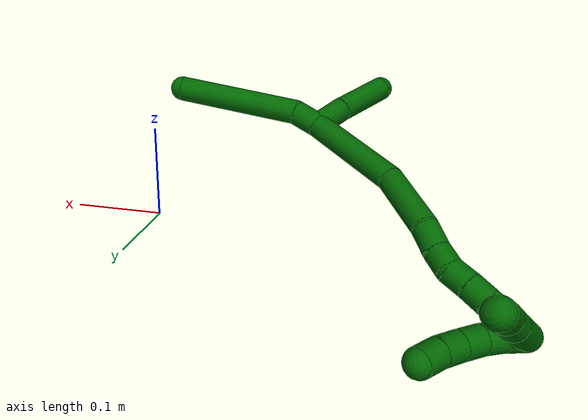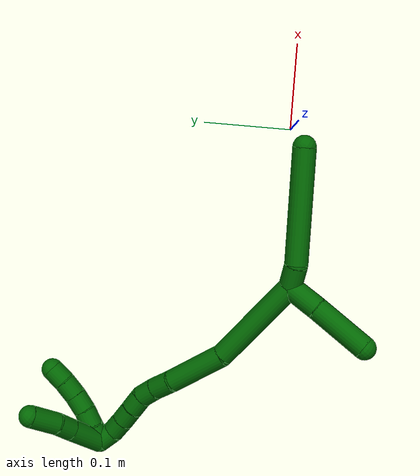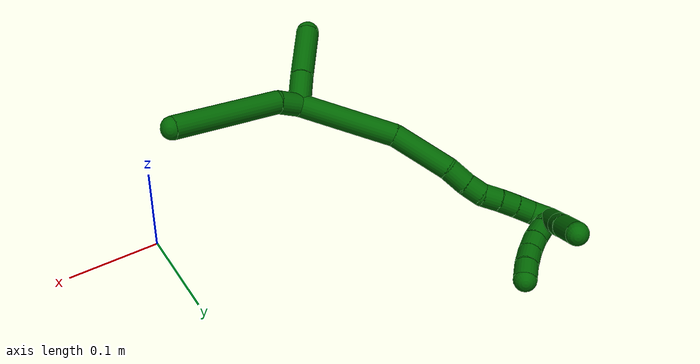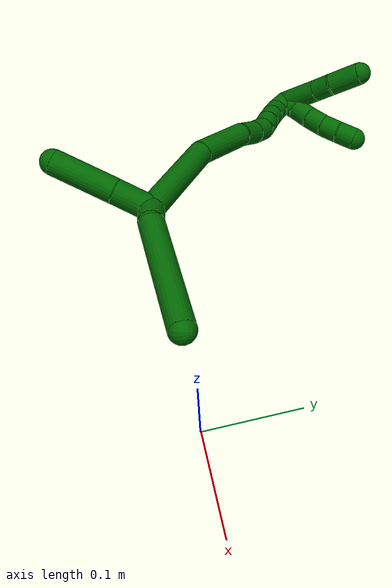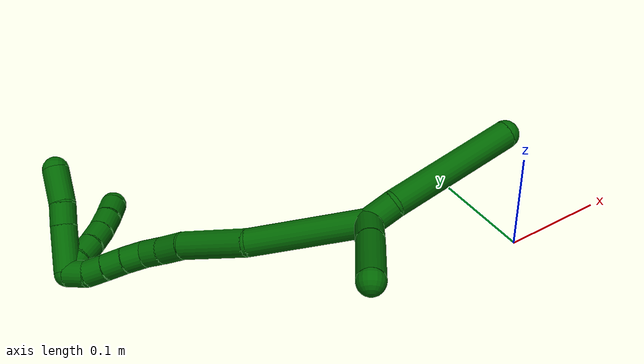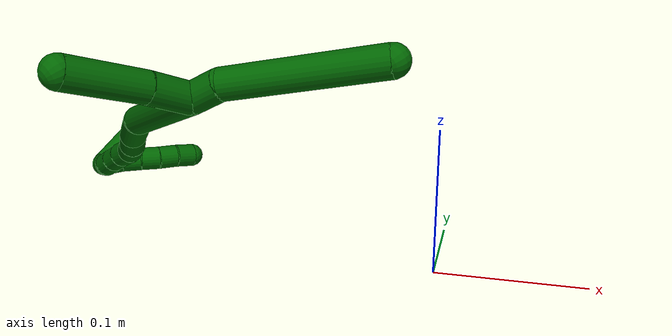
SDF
<sdf version="1.7">
 <world name="default">
  <model name="photoneo_s_sensor">
   <static>1</static>
   <pose>0 0 2 1.57079 1.57079 3.14159</pose>
   <link name="link">
    <inertial><mass>0.1</mass></inertial>
    <sensor name="sensor" type="depth">
     <update_rate>30</update_rate>
     <camera>
      <horizontal_fov>1.22</horizontal_fov>
      <image><width>1920</width><height>1200</height><format>B8G8R8</format></image>
      <clip><near>0.1</near><far>4</far></clip>
      <depth_camera><output>points</output></depth_camera>
     </camera>
     <plugin name="camera_plugin" filename="libgazebo_ros_depth_camera.so">
      <baseline>0.2</baseline>
      <alwaysOn>1</alwaysOn>
      <updateRate>0.0</updateRate>
      <cameraName>camera_ir</cameraName>
      <imageTopicName>/camera/color/image_raw</imageTopicName>
      <cameraInfoTopicName>/camera/color/camera_info</cameraInfoTopicName>
      <depthImageTopicName>/camera/depth/image_raw</depthImageTopicName>
      <depthImageCameraInfoTopicName>/camera/depth/camera_info</depthImageCameraInfoTopicName>
      <pointCloudTopicName>/camera/depth/points</pointCloudTopicName>
      <frameName>fr_optical</frameName>
      <pointCloudCutoff>0.1</pointCloudCutoff>
      <pointCloudCutoffMax>2.0</pointCloudCutoffMax>
      <distortionK1>0</distortionK1>
      <distortionK2>0</distortionK2>
      <distortionK3>0</distortionK3>
      <distortionT1>0</distortionT1>
      <distortionT2>0</distortionT2>
      <CxPrime>0</CxPrime>
      <Cx>0</Cx>
      <Cy>0</Cy>
      <focalLength>0</focalLength>
      <hackBaseline>0</hackBaseline>
     </plugin>
    </sensor>
   </link>
  </model>
  <model name="bin">
   <static>1</static>
   <link name="bottom">
    <collision name="collision-bottom">
     <pose>0 0 -0.01 0 -0 0</pose>
     <geometry><box><size>0.8 0.6 0.02</size></box></geometry>
     <surface>
      <friction><ode><mu>100</mu><mu2>100</mu2></ode></friction>
      <contact><collide_bitmask>65535</collide_bitmask></contact>
     </surface>
    </collision>
   </link>
   <link name="west_wall">
    <collision name="collision-west_wall">
     <pose>-0.41 0 0.1 0 -0 0</pose>
     <geometry><box><size>0.02 0.6 0.2</size></box></geometry>
     <surface>
      <friction><ode><mu>100</mu><mu2>100</mu2></ode></friction>
      <contact><collide_bitmask>65535</collide_bitmask></contact>
     </surface>
    </collision>
   </link>
   <link name="east_wall">
    <collision name="collision-east_wall">
     <pose>0.41 0 0.1 0 -0 0</pose>
     <geometry><box><size>0.02 0.6 0.2</size></box></geometry>
     <surface>
      <friction><ode><mu>100</mu><mu2>100</mu2></ode></friction>
      <contact><collide_bitmask>65535</collide_bitmask></contact>
     </surface>
    </collision>
   </link>
   <link name="south_wall">
    <collision name="collision-south_wall">
     <pose>0 -0.31 0.1 0 -0 0</pose>
     <geometry><box><size>0.8 0.02 0.2</size></box></geometry>
     <surface>
      <friction><ode><mu>100</mu><mu2>100</mu2></ode></friction>
      <contact><collide_bitmask>65535</collide_bitmask></contact>
     </surface>
    </collision>
   </link>
   <link name="north_wall">
    <collision name="collision-north_wall">
     <pose>0 0.31 0.1 0 -0 0</pose>
     <geometry><box><size>0.8 0.02 0.2</size></box></geometry>
     <surface>
      <friction><ode><mu>100</mu><mu2>100</mu2></ode></friction>
      <contact><collide_bitmask>65535</collide_bitmask></contact>
     </surface>
    </collision>
   </link>
  </model>
  <model name="6">
   <static>0</static>
   <link name="6">
    <collision name="collision-cylinder-e_1_2_8">
     <pose>0.009047 0.006454 0.007432 -0.715055 0.743253 -0.289165</pose>
     <geometry><cylinder><radius>0.0125</radius><length>0.026739</length></cylinder></geometry>
     <surface>
      <friction><ode><mu>1.16</mu><mu2>1.16</mu2><slip1>0</slip1><slip2>0</slip2></ode></friction>
      <contact><ode><kp>1e+06</kp><kd>1</kd><max_vel>0</max_vel><min_depth>0.001</min_depth></ode></contact>
     </surface>
    </collision>
    <visual name="visual-cylinder-e_1_2_8">
     <pose>0.009047 0.006454 0.007432 -0.715055 0.743253 -0.289165</pose>
     <geometry><cylinder><radius>0.0125</radius><length>0.026739</length></cylinder></geometry>
     <material><ambient>0 0.392157 0.003922 1</ambient></material>
    </visual>
    <collision name="collision-cylinder-e_2_8_6">
     <pose>0.043958 0.054624 0.052136 -0.841616 0.433073 -0.196273</pose>
     <geometry><cylinder><radius>0.0125</radius><length>0.123261</length></cylinder></geometry>
     <surface>
      <friction><ode><mu>1.16</mu><mu2>1.16</mu2><slip1>0</slip1><slip2>0</slip2></ode></friction>
      <contact><ode><kp>1e+06</kp><kd>1</kd><max_vel>0</max_vel><min_depth>0.001</min_depth></ode></contact>
     </surface>
    </collision>
    <visual name="visual-cylinder-e_2_8_6">
     <pose>0.043958 0.054624 0.052136 -0.841616 0.433073 -0.196273</pose>
     <geometry><cylinder><radius>0.0125</radius><length>0.123261</length></cylinder></geometry>
     <material><ambient>0 0.392157 0.003922 1</ambient></material>
    </visual>
    <collision name="collision-cylinder-e_1_2_9">
     <pose>0.009606 -0.007332 -0.013978 2.65848 0.546703 1.69973</pose>
     <geometry><cylinder><radius>0.0125</radius><length>0.036954</length></cylinder></geometry>
     <surface>
      <friction><ode><mu>1.16</mu><mu2>1.16</mu2><slip1>0</slip1><slip2>0</slip2></ode></friction>
      <contact><ode><kp>1e+06</kp><kd>1</kd><max_vel>0</max_vel><min_depth>0.001</min_depth></ode></contact>
     </surface>
    </collision>
    <visual name="visual-cylinder-e_1_2_9">
     <pose>0.009606 -0.007332 -0.013978 2.65848 0.546703 1.69973</pose>
     <geometry><cylinder><radius>0.0125</radius><length>0.036954</length></cylinder></geometry>
     <material><ambient>0 0.392157 0.003922 1</ambient></material>
    </visual>
    <collision name="collision-cylinder-e_2_9_5">
     <pose>0.033852 -0.02686 -0.053067 2.68949 0.48299 1.63929</pose>
     <geometry><cylinder><radius>0.0125</radius><length>0.063046</length></cylinder></geometry>
     <surface>
      <friction><ode><mu>1.16</mu><mu2>1.16</mu2><slip1>0</slip1><slip2>0</slip2></ode></friction>
      <contact><ode><kp>1e+06</kp><kd>1</kd><max_vel>0</max_vel><min_depth>0.001</min_depth></ode></contact>
     </surface>
    </collision>
    <visual name="visual-cylinder-e_2_9_5">
     <pose>0.033852 -0.02686 -0.053067 2.68949 0.48299 1.63929</pose>
     <geometry><cylinder><radius>0.0125</radius><length>0.063046</length></cylinder></geometry>
     <material><ambient>0 0.392157 0.003922 1</ambient></material>
    </visual>
    <collision name="collision-cylinder-e_1_2_10">
     <pose>-0.044047 -0.030446 -0.003506 1.68543 -0.962901 -1.06022</pose>
     <geometry><cylinder><radius>0.0125</radius><length>0.10732</length></cylinder></geometry>
     <surface>
      <friction><ode><mu>1.16</mu><mu2>1.16</mu2><slip1>0</slip1><slip2>0</slip2></ode></friction>
      <contact><ode><kp>1e+06</kp><kd>1</kd><max_vel>0</max_vel><min_depth>0.001</min_depth></ode></contact>
     </surface>
    </collision>
    <visual name="visual-cylinder-e_1_2_10">
     <pose>-0.044047 -0.030446 -0.003506 1.68543 -0.962901 -1.06022</pose>
     <geometry><cylinder><radius>0.0125</radius><length>0.10732</length></cylinder></geometry>
     <material><ambient>0 0.392157 0.003922 1</ambient></material>
    </visual>
    <collision name="collision-cylinder-e_2_10_11">
     <pose>-0.118604 -0.073834 -0.002019 1.20264 -1.14411 -0.831937</pose>
     <geometry><cylinder><radius>0.0125</radius><length>0.067031</length></cylinder></geometry>
     <surface>
      <friction><ode><mu>1.16</mu><mu2>1.16</mu2><slip1>0</slip1><slip2>0</slip2></ode></friction>
      <contact><ode><kp>1e+06</kp><kd>1</kd><max_vel>0</max_vel><min_depth>0.001</min_depth></ode></contact>
     </surface>
    </collision>
    <visual name="visual-cylinder-e_2_10_11">
     <pose>-0.118604 -0.073834 -0.002019 1.20264 -1.14411 -0.831937</pose>
     <geometry><cylinder><radius>0.0125</radius><length>0.067031</length></cylinder></geometry>
     <material><ambient>0 0.392157 0.003922 1</ambient></material>
    </visual>
    <collision name="collision-cylinder-e_3_11_12">
     <pose>-0.161343 -0.089541 0.003806 1.27831 -1.3388 -1.06326</pose>
     <geometry><cylinder><radius>0.0125</radius><length>0.02513</length></cylinder></geometry>
     <surface>
      <friction><ode><mu>1.16</mu><mu2>1.16</mu2><slip1>0</slip1><slip2>0</slip2></ode></friction>
      <contact><ode><kp>1e+06</kp><kd>1</kd><max_vel>0</max_vel><min_depth>0.001</min_depth></ode></contact>
     </surface>
    </collision>
    <visual name="visual-cylinder-e_3_11_12">
     <pose>-0.161343 -0.089541 0.003806 1.27831 -1.3388 -1.06326</pose>
     <geometry><cylinder><radius>0.0125</radius><length>0.02513</length></cylinder></geometry>
     <material><ambient>0 0.392157 0.003922 1</ambient></material>
    </visual>
    <collision name="collision-cylinder-e_4_12_13">
     <pose>-0.183204 -0.095689 0.005074 1.44288 -1.23062 -1.11254</pose>
     <geometry><cylinder><radius>0.0125</radius><length>0.020437</length></cylinder></geometry>
     <surface>
      <friction><ode><mu>1.16</mu><mu2>1.16</mu2><slip1>0</slip1><slip2>0</slip2></ode></friction>
      <contact><ode><kp>1e+06</kp><kd>1</kd><max_vel>0</max_vel><min_depth>0.001</min_depth></ode></contact>
     </surface>
    </collision>
    <visual name="visual-cylinder-e_4_12_13">
     <pose>-0.183204 -0.095689 0.005074 1.44288 -1.23062 -1.11254</pose>
     <geometry><cylinder><radius>0.0125</radius><length>0.020437</length></cylinder></geometry>
     <material><ambient>0 0.392157 0.003922 1</ambient></material>
    </visual>
    <collision name="collision-cylinder-e_5_13_14">
     <pose>-0.201123 -0.104384 0.003628 1.91084 -0.973421 -1.28512</pose>
     <geometry><cylinder><radius>0.0125</radius><length>0.020042</length></cylinder></geometry>
     <surface>
      <friction><ode><mu>1.16</mu><mu2>1.16</mu2><slip1>0</slip1><slip2>0</slip2></ode></friction>
      <contact><ode><kp>1e+06</kp><kd>1</kd><max_vel>0</max_vel><min_depth>0.001</min_depth></ode></contact>
     </surface>
    </collision>
    <visual name="visual-cylinder-e_5_13_14">
     <pose>-0.201123 -0.104384 0.003628 1.91084 -0.973421 -1.28512</pose>
     <geometry><cylinder><radius>0.0125</radius><length>0.020042</length></cylinder></geometry>
     <material><ambient>0 0.392157 0.003922 1</ambient></material>
    </visual>
    <collision name="collision-cylinder-e_6_14_15">
     <pose>-0.217955 -0.114476 -0.000376 1.98924 -1.02174 -1.42363</pose>
     <geometry><cylinder><radius>0.0125</radius><length>0.020037</length></cylinder></geometry>
     <surface>
      <friction><ode><mu>1.16</mu><mu2>1.16</mu2><slip1>0</slip1><slip2>0</slip2></ode></friction>
      <contact><ode><kp>1e+06</kp><kd>1</kd><max_vel>0</max_vel><min_depth>0.001</min_depth></ode></contact>
     </surface>
    </collision>
    <visual name="visual-cylinder-e_6_14_15">
     <pose>-0.217955 -0.114476 -0.000376 1.98924 -1.02174 -1.42363</pose>
     <geometry><cylinder><radius>0.0125</radius><length>0.020037</length></cylinder></geometry>
     <material><ambient>0 0.392157 0.003922 1</ambient></material>
    </visual>
    <collision name="collision-cylinder-e_7_15_16">
     <pose>-0.235171 -0.123896 -0.00431 1.94244 -1.04918 -1.40505</pose>
     <geometry><cylinder><radius>0.0125</radius><length>0.020001</length></cylinder></geometry>
     <surface>
      <friction><ode><mu>1.16</mu><mu2>1.16</mu2><slip1>0</slip1><slip2>0</slip2></ode></friction>
      <contact><ode><kp>1e+06</kp><kd>1</kd><max_vel>0</max_vel><min_depth>0.001</min_depth></ode></contact>
     </surface>
    </collision>
    <visual name="visual-cylinder-e_7_15_16">
     <pose>-0.235171 -0.123896 -0.00431 1.94244 -1.04918 -1.40505</pose>
     <geometry><cylinder><radius>0.0125</radius><length>0.020001</length></cylinder></geometry>
     <material><ambient>0 0.392157 0.003922 1</ambient></material>
    </visual>
    <collision name="collision-cylinder-e_8_16_1">
     <pose>-0.251927 -0.134294 -0.004885 1.35943 -0.941502 -0.78041</pose>
     <geometry><cylinder><radius>0.0125</radius><length>0.020001</length></cylinder></geometry>
     <surface>
      <friction><ode><mu>1.16</mu><mu2>1.16</mu2><slip1>0</slip1><slip2>0</slip2></ode></friction>
      <contact><ode><kp>1e+06</kp><kd>1</kd><max_vel>0</max_vel><min_depth>0.001</min_depth></ode></contact>
     </surface>
    </collision>
    <visual name="visual-cylinder-e_8_16_1">
     <pose>-0.251927 -0.134294 -0.004885 1.35943 -0.941502 -0.78041</pose>
     <geometry><cylinder><radius>0.0125</radius><length>0.020001</length></cylinder></geometry>
     <material><ambient>0 0.392157 0.003922 1</ambient></material>
    </visual>
    <collision name="collision-cylinder-e_1_1_17">
     <pose>-0.258314 -0.14547 0.017666 0.249023 0.077048 0.009648</pose>
     <geometry><cylinder><radius>0.0125</radius><length>0.04412</length></cylinder></geometry>
     <surface>
      <friction><ode><mu>1.16</mu><mu2>1.16</mu2><slip1>0</slip1><slip2>0</slip2></ode></friction>
      <contact><ode><kp>1e+06</kp><kd>1</kd><max_vel>0</max_vel><min_depth>0.001</min_depth></ode></contact>
     </surface>
    </collision>
    <visual name="visual-cylinder-e_1_1_17">
     <pose>-0.258314 -0.14547 0.017666 0.249023 0.077048 0.009648</pose>
     <geometry><cylinder><radius>0.0125</radius><length>0.04412</length></cylinder></geometry>
     <material><ambient>0 0.392157 0.003922 1</ambient></material>
    </visual>
    <collision name="collision-cylinder-e_2_17_18">
     <pose>-0.255208 -0.153474 0.049232 0.246878 0.132427 0.016454</pose>
     <geometry><cylinder><radius>0.0125</radius><length>0.021327</length></cylinder></geometry>
     <surface>
      <friction><ode><mu>1.16</mu><mu2>1.16</mu2><slip1>0</slip1><slip2>0</slip2></ode></friction>
      <contact><ode><kp>1e+06</kp><kd>1</kd><max_vel>0</max_vel><min_depth>0.001</min_depth></ode></contact>
     </surface>
    </collision>
    <visual name="visual-cylinder-e_2_17_18">
     <pose>-0.255208 -0.153474 0.049232 0.246878 0.132427 0.016454</pose>
     <geometry><cylinder><radius>0.0125</radius><length>0.021327</length></cylinder></geometry>
     <material><ambient>0 0.392157 0.003922 1</ambient></material>
    </visual>
    <collision name="collision-cylinder-e_3_18_4">
     <pose>-0.25469 -0.161171 0.07596 0.300961 -0.051548 -0.007818</pose>
     <geometry><cylinder><radius>0.0125</radius><length>0.034553</length></cylinder></geometry>
     <surface>
      <friction><ode><mu>1.16</mu><mu2>1.16</mu2><slip1>0</slip1><slip2>0</slip2></ode></friction>
      <contact><ode><kp>1e+06</kp><kd>1</kd><max_vel>0</max_vel><min_depth>0.001</min_depth></ode></contact>
     </surface>
    </collision>
    <visual name="visual-cylinder-e_3_18_4">
     <pose>-0.25469 -0.161171 0.07596 0.300961 -0.051548 -0.007818</pose>
     <geometry><cylinder><radius>0.0125</radius><length>0.034553</length></cylinder></geometry>
     <material><ambient>0 0.392157 0.003922 1</ambient></material>
    </visual>
    <collision name="collision-cylinder-e_1_1_19">
     <pose>-0.259081 -0.135331 0.005118 -0.493701 0.093287 -0.023523</pose>
     <geometry><cylinder><radius>0.0125</radius><length>0.02</length></cylinder></geometry>
     <surface>
      <friction><ode><mu>1.16</mu><mu2>1.16</mu2><slip1>0</slip1><slip2>0</slip2></ode></friction>
      <contact><ode><kp>1e+06</kp><kd>1</kd><max_vel>0</max_vel><min_depth>0.001</min_depth></ode></contact>
     </surface>
    </collision>
    <visual name="visual-cylinder-e_1_1_19">
     <pose>-0.259081 -0.135331 0.005118 -0.493701 0.093287 -0.023523</pose>
     <geometry><cylinder><radius>0.0125</radius><length>0.02</length></cylinder></geometry>
     <material><ambient>0 0.392157 0.003922 1</ambient></material>
    </visual>
    <collision name="collision-cylinder-e_2_19_20">
     <pose>-0.258218 -0.125245 0.022322 -0.56665 -0.006859 0.001997</pose>
     <geometry><cylinder><radius>0.0125</radius><length>0.02</length></cylinder></geometry>
     <surface>
      <friction><ode><mu>1.16</mu><mu2>1.16</mu2><slip1>0</slip1><slip2>0</slip2></ode></friction>
      <contact><ode><kp>1e+06</kp><kd>1</kd><max_vel>0</max_vel><min_depth>0.001</min_depth></ode></contact>
     </surface>
    </collision>
    <visual name="visual-cylinder-e_2_19_20">
     <pose>-0.258218 -0.125245 0.022322 -0.56665 -0.006859 0.001997</pose>
     <geometry><cylinder><radius>0.0125</radius><length>0.02</length></cylinder></geometry>
     <material><ambient>0 0.392157 0.003922 1</ambient></material>
    </visual>
    <collision name="collision-cylinder-e_3_20_21">
     <pose>-0.259548 -0.115016 0.039406 -0.512087 -0.126451 0.033145</pose>
     <geometry><cylinder><radius>0.0125</radius><length>0.02</length></cylinder></geometry>
     <surface>
      <friction><ode><mu>1.16</mu><mu2>1.16</mu2><slip1>0</slip1><slip2>0</slip2></ode></friction>
      <contact><ode><kp>1e+06</kp><kd>1</kd><max_vel>0</max_vel><min_depth>0.001</min_depth></ode></contact>
     </surface>
    </collision>
    <visual name="visual-cylinder-e_3_20_21">
     <pose>-0.259548 -0.115016 0.039406 -0.512087 -0.126451 0.033145</pose>
     <geometry><cylinder><radius>0.0125</radius><length>0.02</length></cylinder></geometry>
     <material><ambient>0 0.392157 0.003922 1</ambient></material>
    </visual>
    <collision name="collision-cylinder-e_4_21_22">
     <pose>-0.262483 -0.106164 0.057069 -0.416831 -0.168269 0.035667</pose>
     <geometry><cylinder><radius>0.0125</radius><length>0.02</length></cylinder></geometry>
     <surface>
      <friction><ode><mu>1.16</mu><mu2>1.16</mu2><slip1>0</slip1><slip2>0</slip2></ode></friction>
      <contact><ode><kp>1e+06</kp><kd>1</kd><max_vel>0</max_vel><min_depth>0.001</min_depth></ode></contact>
     </surface>
    </collision>
    <visual name="visual-cylinder-e_4_21_22">
     <pose>-0.262483 -0.106164 0.057069 -0.416831 -0.168269 0.035667</pose>
     <geometry><cylinder><radius>0.0125</radius><length>0.02</length></cylinder></geometry>
     <material><ambient>0 0.392157 0.003922 1</ambient></material>
    </visual>
    <collision name="collision-cylinder-e_5_22_3">
     <pose>-0.267171 -0.098453 0.074863 -0.400672 -0.306059 0.062618</pose>
     <geometry><cylinder><radius>0.0125</radius><length>0.02</length></cylinder></geometry>
     <surface>
      <friction><ode><mu>1.16</mu><mu2>1.16</mu2><slip1>0</slip1><slip2>0</slip2></ode></friction>
      <contact><ode><kp>1e+06</kp><kd>1</kd><max_vel>0</max_vel><min_depth>0.001</min_depth></ode></contact>
     </surface>
    </collision>
    <visual name="visual-cylinder-e_5_22_3">
     <pose>-0.267171 -0.098453 0.074863 -0.400672 -0.306059 0.062618</pose>
     <geometry><cylinder><radius>0.0125</radius><length>0.02</length></cylinder></geometry>
     <material><ambient>0 0.392157 0.003922 1</ambient></material>
    </visual>
    <collision name="collision-sphere-3">
     <pose>-0.270184 -0.094734 0.083644 0 -0 0</pose>
     <geometry><sphere><radius>0.0125</radius></sphere></geometry>
     <surface>
      <friction><ode><mu>1.16</mu><mu2>1.16</mu2><slip1>0</slip1><slip2>0</slip2></ode></friction>
      <contact><ode><kp>1e+06</kp><kd>1</kd><max_vel>0</max_vel><min_depth>0.001</min_depth></ode></contact>
     </surface>
    </collision>
    <visual name="visual-sphere-3">
     <pose>-0.270184 -0.094734 0.083644 0 -0 0</pose>
     <geometry><sphere><radius>0.0125</radius></sphere></geometry>
     <material><ambient>0 0.392157 0.003922 1</ambient></material>
    </visual>
    <collision name="collision-sphere-22">
     <pose>-0.264158 -0.102172 0.066083 0 -0 0</pose>
     <geometry><sphere><radius>0.0125</radius></sphere></geometry>
     <surface>
      <friction><ode><mu>1.16</mu><mu2>1.16</mu2><slip1>0</slip1><slip2>0</slip2></ode></friction>
      <contact><ode><kp>1e+06</kp><kd>1</kd><max_vel>0</max_vel><min_depth>0.001</min_depth></ode></contact>
     </surface>
    </collision>
    <visual name="visual-sphere-22">
     <pose>-0.264158 -0.102172 0.066083 0 -0 0</pose>
     <geometry><sphere><radius>0.0125</radius></sphere></geometry>
     <material><ambient>0 0.392157 0.003922 1</ambient></material>
    </visual>
    <collision name="collision-sphere-21">
     <pose>-0.260809 -0.110155 0.048054 0 -0 0</pose>
     <geometry><sphere><radius>0.0125</radius></sphere></geometry>
     <surface>
      <friction><ode><mu>1.16</mu><mu2>1.16</mu2><slip1>0</slip1><slip2>0</slip2></ode></friction>
      <contact><ode><kp>1e+06</kp><kd>1</kd><max_vel>0</max_vel><min_depth>0.001</min_depth></ode></contact>
     </surface>
    </collision>
    <visual name="visual-sphere-21">
     <pose>-0.260809 -0.110155 0.048054 0 -0 0</pose>
     <geometry><sphere><radius>0.0125</radius></sphere></geometry>
     <material><ambient>0 0.392157 0.003922 1</ambient></material>
    </visual>
    <collision name="collision-sphere-20">
     <pose>-0.258286 -0.119877 0.030759 0 -0 0</pose>
     <geometry><sphere><radius>0.0125</radius></sphere></geometry>
     <surface>
      <friction><ode><mu>1.16</mu><mu2>1.16</mu2><slip1>0</slip1><slip2>0</slip2></ode></friction>
      <contact><ode><kp>1e+06</kp><kd>1</kd><max_vel>0</max_vel><min_depth>0.001</min_depth></ode></contact>
     </surface>
    </collision>
    <visual name="visual-sphere-20">
     <pose>-0.258286 -0.119877 0.030759 0 -0 0</pose>
     <geometry><sphere><radius>0.0125</radius></sphere></geometry>
     <material><ambient>0 0.392157 0.003922 1</ambient></material>
    </visual>
    <collision name="collision-sphere-19">
     <pose>-0.258149 -0.130613 0.013885 0 -0 0</pose>
     <geometry><sphere><radius>0.0125</radius></sphere></geometry>
     <surface>
      <friction><ode><mu>1.16</mu><mu2>1.16</mu2><slip1>0</slip1><slip2>0</slip2></ode></friction>
      <contact><ode><kp>1e+06</kp><kd>1</kd><max_vel>0</max_vel><min_depth>0.001</min_depth></ode></contact>
     </surface>
    </collision>
    <visual name="visual-sphere-19">
     <pose>-0.258149 -0.130613 0.013885 0 -0 0</pose>
     <geometry><sphere><radius>0.0125</radius></sphere></geometry>
     <material><ambient>0 0.392157 0.003922 1</ambient></material>
    </visual>
    <collision name="collision-sphere-10">
     <pose>-0.088094 -0.060892 -0.007011 0 -0 0</pose>
     <geometry><sphere><radius>0.0125</radius></sphere></geometry>
     <surface>
      <friction><ode><mu>1.16</mu><mu2>1.16</mu2><slip1>0</slip1><slip2>0</slip2></ode></friction>
      <contact><ode><kp>1e+06</kp><kd>1</kd><max_vel>0</max_vel><min_depth>0.001</min_depth></ode></contact>
     </surface>
    </collision>
    <visual name="visual-sphere-10">
     <pose>-0.088094 -0.060892 -0.007011 0 -0 0</pose>
     <geometry><sphere><radius>0.0125</radius></sphere></geometry>
     <material><ambient>0 0.392157 0.003922 1</ambient></material>
    </visual>
    <collision name="collision-sphere-5">
     <pose>0.048492 -0.039056 -0.078179 0 -0 0</pose>
     <geometry><sphere><radius>0.0125</radius></sphere></geometry>
     <surface>
      <friction><ode><mu>1.16</mu><mu2>1.16</mu2><slip1>0</slip1><slip2>0</slip2></ode></friction>
      <contact><ode><kp>1e+06</kp><kd>1</kd><max_vel>0</max_vel><min_depth>0.001</min_depth></ode></contact>
     </surface>
    </collision>
    <visual name="visual-sphere-5">
     <pose>0.048492 -0.039056 -0.078179 0 -0 0</pose>
     <geometry><sphere><radius>0.0125</radius></sphere></geometry>
     <material><ambient>0 0.392157 0.003922 1</ambient></material>
    </visual>
    <collision name="collision-sphere-6">
     <pose>0.069822 0.09634 0.089407 0 -0 0</pose>
     <geometry><sphere><radius>0.0125</radius></sphere></geometry>
     <surface>
      <friction><ode><mu>1.16</mu><mu2>1.16</mu2><slip1>0</slip1><slip2>0</slip2></ode></friction>
      <contact><ode><kp>1e+06</kp><kd>1</kd><max_vel>0</max_vel><min_depth>0.001</min_depth></ode></contact>
     </surface>
    </collision>
    <visual name="visual-sphere-6">
     <pose>0.069822 0.09634 0.089407 0 -0 0</pose>
     <geometry><sphere><radius>0.0125</radius></sphere></geometry>
     <material><ambient>0 0.392157 0.003922 1</ambient></material>
    </visual>
    <collision name="collision-sphere-9">
     <pose>0.019212 -0.014664 -0.027955 0 -0 0</pose>
     <geometry><sphere><radius>0.0125</radius></sphere></geometry>
     <surface>
      <friction><ode><mu>1.16</mu><mu2>1.16</mu2><slip1>0</slip1><slip2>0</slip2></ode></friction>
      <contact><ode><kp>1e+06</kp><kd>1</kd><max_vel>0</max_vel><min_depth>0.001</min_depth></ode></contact>
     </surface>
    </collision>
    <visual name="visual-sphere-9">
     <pose>0.019212 -0.014664 -0.027955 0 -0 0</pose>
     <geometry><sphere><radius>0.0125</radius></sphere></geometry>
     <material><ambient>0 0.392157 0.003922 1</ambient></material>
    </visual>
    <collision name="collision-sphere-2">
     <geometry><sphere><radius>0.0125</radius></sphere></geometry>
     <surface>
      <friction><ode><mu>1.16</mu><mu2>1.16</mu2><slip1>0</slip1><slip2>0</slip2></ode></friction>
      <contact><ode><kp>1e+06</kp><kd>1</kd><max_vel>0</max_vel><min_depth>0.001</min_depth></ode></contact>
     </surface>
    </collision>
    <visual name="visual-sphere-2">
     <geometry><sphere><radius>0.0125</radius></sphere></geometry>
     <material><ambient>0 0.392157 0.003922 1</ambient></material>
    </visual>
    <collision name="collision-sphere-8">
     <pose>0.018094 0.012908 0.014865 0 -0 0</pose>
     <geometry><sphere><radius>0.0125</radius></sphere></geometry>
     <surface>
      <friction><ode><mu>1.16</mu><mu2>1.16</mu2><slip1>0</slip1><slip2>0</slip2></ode></friction>
      <contact><ode><kp>1e+06</kp><kd>1</kd><max_vel>0</max_vel><min_depth>0.001</min_depth></ode></contact>
     </surface>
    </collision>
    <visual name="visual-sphere-8">
     <pose>0.018094 0.012908 0.014865 0 -0 0</pose>
     <geometry><sphere><radius>0.0125</radius></sphere></geometry>
     <material><ambient>0 0.392157 0.003922 1</ambient></material>
    </visual>
    <collision name="collision-sphere-11">
     <pose>-0.149115 -0.086775 0.002973 0 -0 0</pose>
     <geometry><sphere><radius>0.0125</radius></sphere></geometry>
     <surface>
      <friction><ode><mu>1.16</mu><mu2>1.16</mu2><slip1>0</slip1><slip2>0</slip2></ode></friction>
      <contact><ode><kp>1e+06</kp><kd>1</kd><max_vel>0</max_vel><min_depth>0.001</min_depth></ode></contact>
     </surface>
    </collision>
    <visual name="visual-sphere-11">
     <pose>-0.149115 -0.086775 0.002973 0 -0 0</pose>
     <geometry><sphere><radius>0.0125</radius></sphere></geometry>
     <material><ambient>0 0.392157 0.003922 1</ambient></material>
    </visual>
    <collision name="collision-sphere-12">
     <pose>-0.173571 -0.092307 0.004639 0 -0 0</pose>
     <geometry><sphere><radius>0.0125</radius></sphere></geometry>
     <surface>
      <friction><ode><mu>1.16</mu><mu2>1.16</mu2><slip1>0</slip1><slip2>0</slip2></ode></friction>
      <contact><ode><kp>1e+06</kp><kd>1</kd><max_vel>0</max_vel><min_depth>0.001</min_depth></ode></contact>
     </surface>
    </collision>
    <visual name="visual-sphere-12">
     <pose>-0.173571 -0.092307 0.004639 0 -0 0</pose>
     <geometry><sphere><radius>0.0125</radius></sphere></geometry>
     <material><ambient>0 0.392157 0.003922 1</ambient></material>
    </visual>
    <collision name="collision-sphere-13">
     <pose>-0.192837 -0.09907 0.005508 0 -0 0</pose>
     <geometry><sphere><radius>0.0125</radius></sphere></geometry>
     <surface>
      <friction><ode><mu>1.16</mu><mu2>1.16</mu2><slip1>0</slip1><slip2>0</slip2></ode></friction>
      <contact><ode><kp>1e+06</kp><kd>1</kd><max_vel>0</max_vel><min_depth>0.001</min_depth></ode></contact>
     </surface>
    </collision>
    <visual name="visual-sphere-13">
     <pose>-0.192837 -0.09907 0.005508 0 -0 0</pose>
     <geometry><sphere><radius>0.0125</radius></sphere></geometry>
     <material><ambient>0 0.392157 0.003922 1</ambient></material>
    </visual>
    <collision name="collision-sphere-14">
     <pose>-0.209409 -0.109698 0.001748 0 -0 0</pose>
     <geometry><sphere><radius>0.0125</radius></sphere></geometry>
     <surface>
      <friction><ode><mu>1.16</mu><mu2>1.16</mu2><slip1>0</slip1><slip2>0</slip2></ode></friction>
      <contact><ode><kp>1e+06</kp><kd>1</kd><max_vel>0</max_vel><min_depth>0.001</min_depth></ode></contact>
     </surface>
    </collision>
    <visual name="visual-sphere-14">
     <pose>-0.209409 -0.109698 0.001748 0 -0 0</pose>
     <geometry><sphere><radius>0.0125</radius></sphere></geometry>
     <material><ambient>0 0.392157 0.003922 1</ambient></material>
    </visual>
    <collision name="collision-sphere-15">
     <pose>-0.226501 -0.119253 -0.002501 0 -0 0</pose>
     <geometry><sphere><radius>0.0125</radius></sphere></geometry>
     <surface>
      <friction><ode><mu>1.16</mu><mu2>1.16</mu2><slip1>0</slip1><slip2>0</slip2></ode></friction>
      <contact><ode><kp>1e+06</kp><kd>1</kd><max_vel>0</max_vel><min_depth>0.001</min_depth></ode></contact>
     </surface>
    </collision>
    <visual name="visual-sphere-15">
     <pose>-0.226501 -0.119253 -0.002501 0 -0 0</pose>
     <geometry><sphere><radius>0.0125</radius></sphere></geometry>
     <material><ambient>0 0.392157 0.003922 1</ambient></material>
    </visual>
    <collision name="collision-sphere-16">
     <pose>-0.243842 -0.128539 -0.00612 0 -0 0</pose>
     <geometry><sphere><radius>0.0125</radius></sphere></geometry>
     <surface>
      <friction><ode><mu>1.16</mu><mu2>1.16</mu2><slip1>0</slip1><slip2>0</slip2></ode></friction>
      <contact><ode><kp>1e+06</kp><kd>1</kd><max_vel>0</max_vel><min_depth>0.001</min_depth></ode></contact>
     </surface>
    </collision>
    <visual name="visual-sphere-16">
     <pose>-0.243842 -0.128539 -0.00612 0 -0 0</pose>
     <geometry><sphere><radius>0.0125</radius></sphere></geometry>
     <material><ambient>0 0.392157 0.003922 1</ambient></material>
    </visual>
    <collision name="collision-sphere-1">
     <pose>-0.260012 -0.140049 -0.00365 0 -0 0</pose>
     <geometry><sphere><radius>0.0125</radius></sphere></geometry>
     <surface>
      <friction><ode><mu>1.16</mu><mu2>1.16</mu2><slip1>0</slip1><slip2>0</slip2></ode></friction>
      <contact><ode><kp>1e+06</kp><kd>1</kd><max_vel>0</max_vel><min_depth>0.001</min_depth></ode></contact>
     </surface>
    </collision>
    <visual name="visual-sphere-1">
     <pose>-0.260012 -0.140049 -0.00365 0 -0 0</pose>
     <geometry><sphere><radius>0.0125</radius></sphere></geometry>
     <material><ambient>0 0.392157 0.003922 1</ambient></material>
    </visual>
    <collision name="collision-sphere-18">
     <pose>-0.2538 -0.156057 0.059481 0 -0 0</pose>
     <geometry><sphere><radius>0.0125</radius></sphere></geometry>
     <surface>
      <friction><ode><mu>1.16</mu><mu2>1.16</mu2><slip1>0</slip1><slip2>0</slip2></ode></friction>
      <contact><ode><kp>1e+06</kp><kd>1</kd><max_vel>0</max_vel><min_depth>0.001</min_depth></ode></contact>
     </surface>
    </collision>
    <visual name="visual-sphere-18">
     <pose>-0.2538 -0.156057 0.059481 0 -0 0</pose>
     <geometry><sphere><radius>0.0125</radius></sphere></geometry>
     <material><ambient>0 0.392157 0.003922 1</ambient></material>
    </visual>
    <collision name="collision-sphere-17">
     <pose>-0.256616 -0.150891 0.038983 0 -0 0</pose>
     <geometry><sphere><radius>0.0125</radius></sphere></geometry>
     <surface>
      <friction><ode><mu>1.16</mu><mu2>1.16</mu2><slip1>0</slip1><slip2>0</slip2></ode></friction>
      <contact><ode><kp>1e+06</kp><kd>1</kd><max_vel>0</max_vel><min_depth>0.001</min_depth></ode></contact>
     </surface>
    </collision>
    <visual name="visual-sphere-17">
     <pose>-0.256616 -0.150891 0.038983 0 -0 0</pose>
     <geometry><sphere><radius>0.0125</radius></sphere></geometry>
     <material><ambient>0 0.392157 0.003922 1</ambient></material>
    </visual>
    <collision name="collision-sphere-4">
     <pose>-0.255581 -0.166286 0.092438 0 -0 0</pose>
     <geometry><sphere><radius>0.0125</radius></sphere></geometry>
     <surface>
      <friction><ode><mu>1.16</mu><mu2>1.16</mu2><slip1>0</slip1><slip2>0</slip2></ode></friction>
      <contact><ode><kp>1e+06</kp><kd>1</kd><max_vel>0</max_vel><min_depth>0.001</min_depth></ode></contact>
     </surface>
    </collision>
    <visual name="visual-sphere-4">
     <pose>-0.255581 -0.166286 0.092438 0 -0 0</pose>
     <geometry><sphere><radius>0.0125</radius></sphere></geometry>
     <material><ambient>0 0.392157 0.003922 1</ambient></material>
    </visual>
    <inertial>
     <pose>-0.10965 -0.058527 0.014349 0 -0 0</pose>
     <mass>0.75</mass>
     <inertia>
      <ixx>0.000124</ixx>
      <ixy>0</ixy>
      <ixz>0</ixz>
      <iyy>0.000175</iyy>
      <iyz>0</iyz>
      <izz>3.1e-05</izz>
     </inertia>
    </inertial>
   </link>
   <pose>-0.177972 -0.004449 0.11545 -0.949576 -0.776135 -1.08202</pose>
  </model>
 </world>
</sdf>
